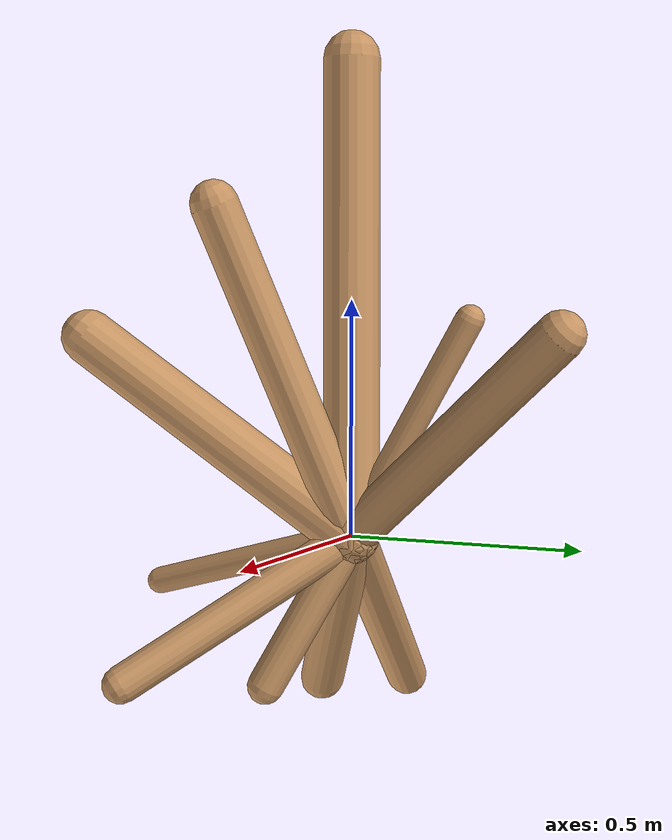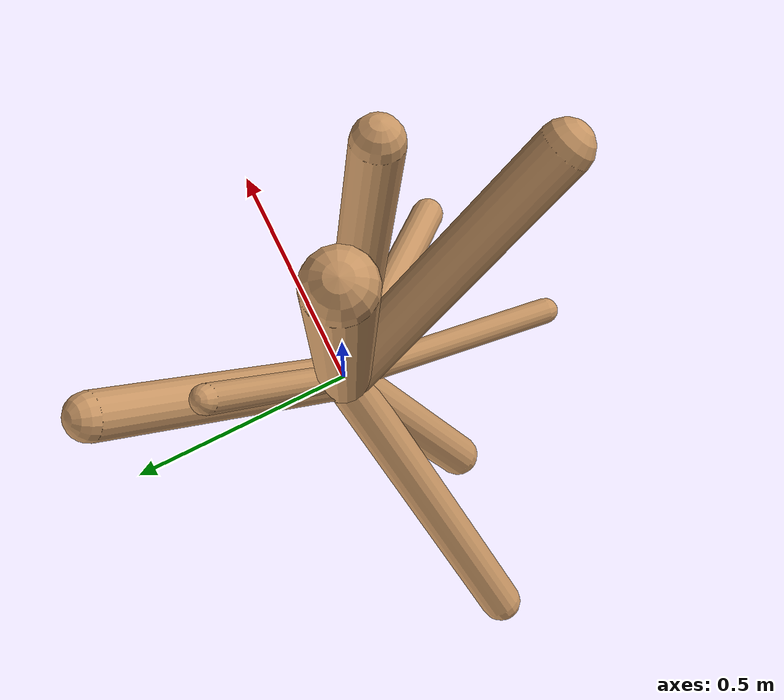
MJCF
<!--
                    joint_number: 9
                    -->
                    <mujoco model="randomrobot">
                        <compiler angle="degree" coordinate="global" inertiafromgeom="true"/>
                        <default>
                        <joint armature="0.01" damping=".1" limited="true"/>
                        <geom conaffinity="0" condim="3" contype="1" density="1000" friction="0.8 .1 .1" rgba="0.8 0.6 .4 1"/>
                        </default>
                        <option integrator="RK4" timestep="0.002"/>
                        <worldbody>
                    <body name='torso' pos='0.00 0.00 0.87'><geom fromto='0 0 0 0.00 0.00 1.00' name='torso_geom' size='0.06' type='capsule'/><inertial mass='0.3'/><body name='L0_D1' pos='0.00 0.00 0.52'><joint axis='0 1 0' name='L0_D1_joint' pos='0 0 0' range='48.11 57.11' type='hinge'/><geom fromto='0 0 0 0.09 0.48 0.43' name='L0_D1_geom' size='0.05' type='capsule'/><inertial mass='0.3'/><body name='L1_D0' pos='0.03 0.15 0.13'><joint axis='1 0 0' name='L1_D0_joint' pos='0 0 0' range='84.56 139.20' type='hinge'/><geom fromto='0 0 0 0.16 -0.55 0.42' name='L1_D0_geom' size='0.06' type='capsule'/><inertial mass='0.3'/></body></body><body name='L2_D1' pos='0.00 0.00 0.01'><joint axis='0 1 0' name='L2_D1_joint' pos='0 0 0' range='131.79 175.61' type='hinge'/><geom fromto='0 0 0 -0.05 -0.50 -0.14' name='L2_D1_geom' size='0.03' type='capsule'/><inertial mass='0.3'/><body name='L3_D0' pos='-0.03 -0.24 -0.07'><joint axis='0 0 1' name='L3_D0_joint' pos='0 0 0' range='31.32 114.80' type='hinge'/><geom fromto='0 0 0 0.25 -0.19 0.69' name='L3_D0_geom' size='0.05' type='capsule'/><inertial mass='0.3'/></body></body><body name='L4_D1' pos='0.00 0.00 0.85'><joint axis='1 0 0' name='L4_D1_joint' pos='0 0 0' range='40.77 140.83' type='hinge'/><geom fromto='0 0 0 0.02 0.27 0.46' name='L4_D1_geom' size='0.03' type='capsule'/><inertial mass='0.3'/><body name='L5_D0' pos='0.02 0.21 0.35'><joint axis='1 0 0' name='L5_D0_joint' pos='0 0 0' range='74.78 167.40' type='hinge'/><geom fromto='0 0 0 -0.64 -0.13 -0.45' name='L5_D0_geom' size='0.05' type='capsule'/><inertial mass='0.3'/></body><body name='L6_D0' pos='0.02 0.25 0.43'><joint axis='1 0 0' name='L6_D0_joint' pos='0 0 0' range='57.12 67.26' type='hinge'/><geom fromto='0 0 0 -0.26 -0.19 -0.38' name='L6_D0_geom' size='0.05' type='capsule'/><inertial mass='0.3'/></body><body name='L7_D0' pos='0.01 0.10 0.18'><joint axis='0 0 1' name='L7_D0_joint' pos='0 0 0' range='77.22 111.11' type='hinge'/><geom fromto='0 0 0 0.31 -0.38 -0.29' name='L7_D0_geom' size='0.04' type='capsule'/><inertial mass='0.3'/></body></body><body name='L8_D1' pos='0.00 0.00 0.06'><joint axis='0 1 0' name='L8_D1_joint' pos='0 0 0' range='77.20 95.15' type='hinge'/><geom fromto='0 0 0 0.05 -0.18 -0.33' name='L8_D1_geom' size='0.04' type='capsule'/><inertial mass='0.3'/></body></body>
                        </worldbody>
                    </mujoco>
